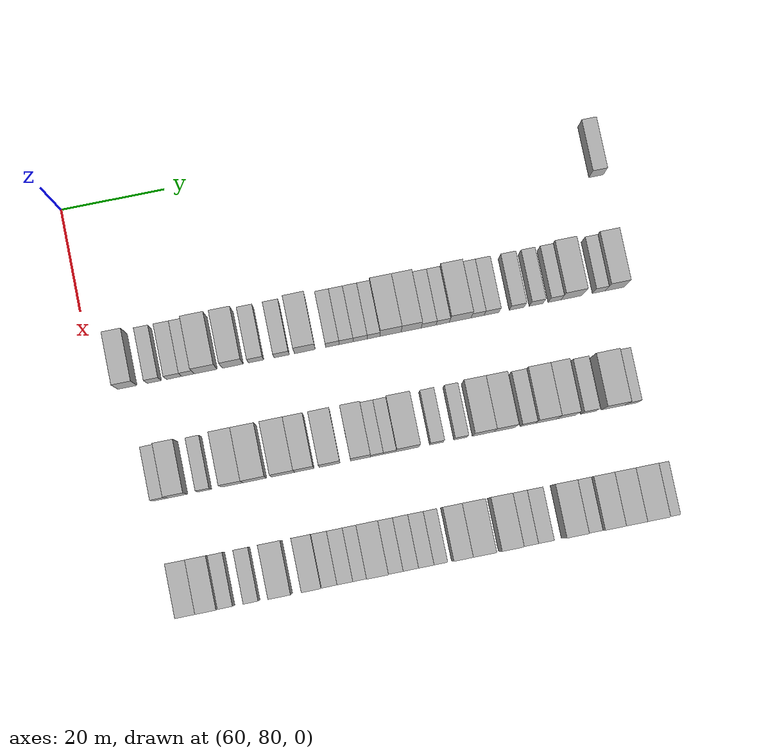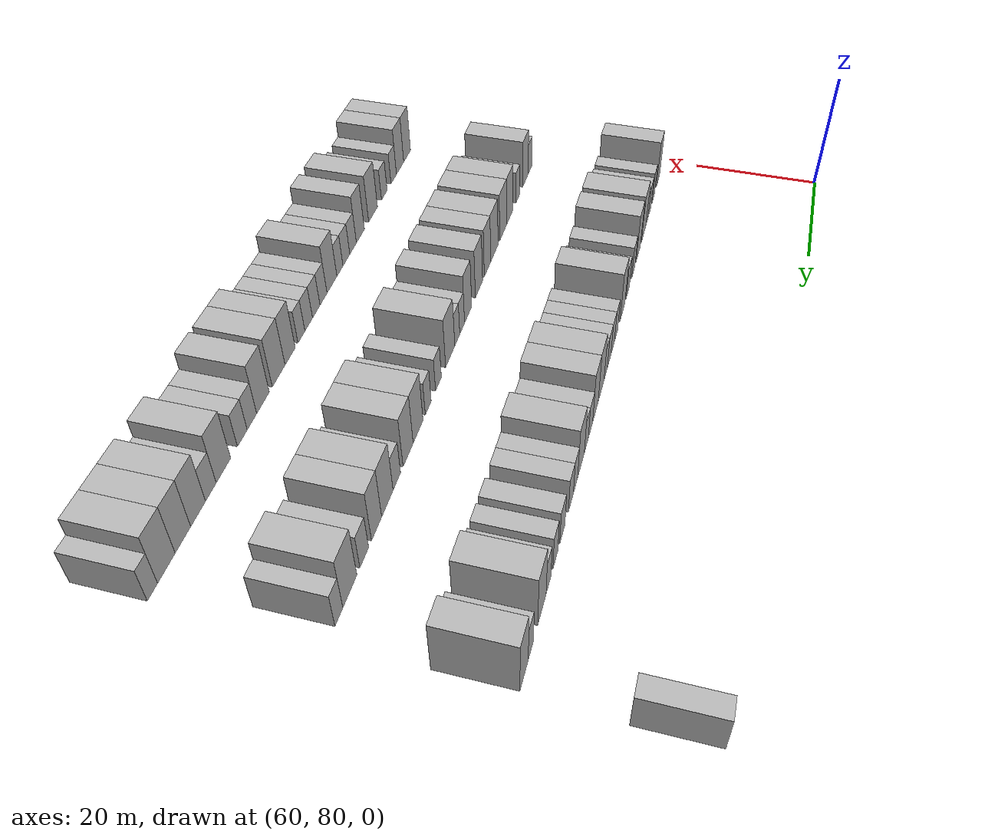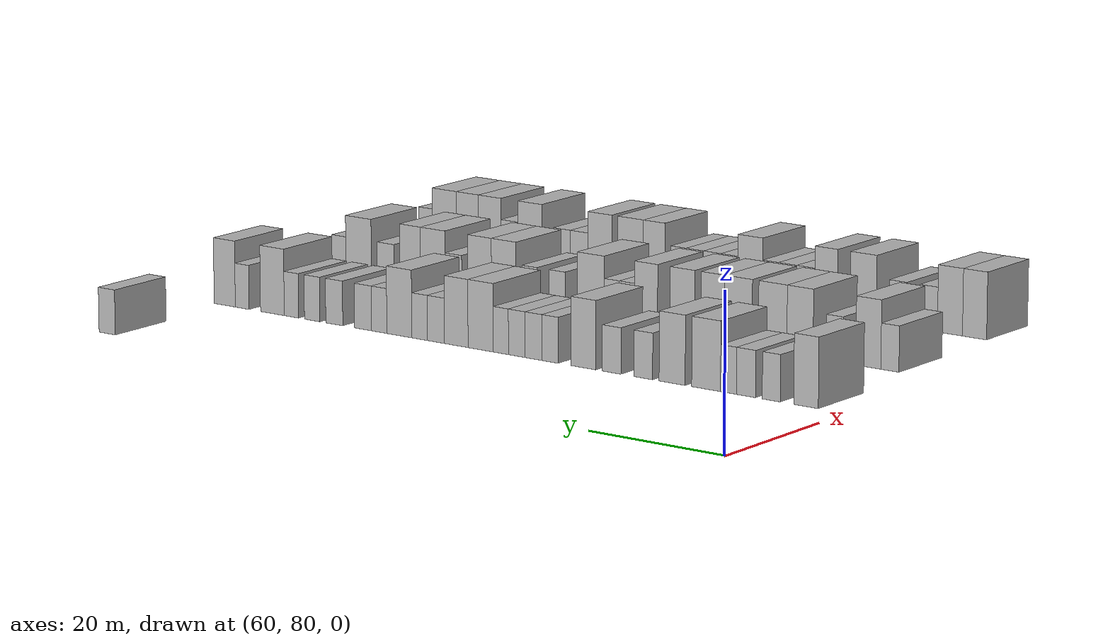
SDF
<sdf version="1.6">
 <world name="default">
  <model name="building_508">
   <static>1</static>
   <pose>69.0000 181.5095 0 0.000000 0.000000 0.000000</pose>
   <link name="link">
    <pose>0 0 3.00 0 0 0</pose>
    <collision name="collision"><geometry><box><size>10.0000 2.8325 6.0000</size></box></geometry></collision>
    <visual name="visual">
     <cast_shadows>0</cast_shadows>
     <geometry><box><size>10.0000 2.8325 6.0000</size></box></geometry>
     <material>
      <script>
       <uri>model://HANNAS_wall/materials/scripts</uri>
       <uri>model://HANNAS_wall/materials/textures</uri>
       <name>vrc/HANNAS_wall</name>
      </script>
     </material>
    </visual>
   </link>
  </model>
  <model name="building_673">
   <static>1</static>
   <pose>91.0000 86.1557 0 0.000000 0.000000 0.000000</pose>
   <link name="link">
    <pose>0 0 4.50 0 0 0</pose>
    <collision name="collision"><geometry><box><size>10.0000 3.6548 9.0000</size></box></geometry></collision>
    <visual name="visual">
     <cast_shadows>0</cast_shadows>
     <geometry><box><size>10.0000 3.6548 9.0000</size></box></geometry>
     <material>
      <script>
       <uri>model://HANNAS_wall/materials/scripts</uri>
       <uri>model://HANNAS_wall/materials/textures</uri>
       <name>vrc/HANNAS_wall</name>
      </script>
     </material>
    </visual>
   </link>
  </model>
  <model name="building_674">
   <static>1</static>
   <pose>91.0000 91.3397 0 0.000000 0.000000 0.000000</pose>
   <link name="link">
    <pose>0 0 3.00 0 0 0</pose>
    <collision name="collision"><geometry><box><size>10.0000 2.7131 6.0000</size></box></geometry></collision>
    <visual name="visual">
     <cast_shadows>0</cast_shadows>
     <geometry><box><size>10.0000 2.7131 6.0000</size></box></geometry>
     <material>
      <script>
       <uri>model://HANNAS_wall/materials/scripts</uri>
       <uri>model://HANNAS_wall/materials/textures</uri>
       <name>vrc/HANNAS_wall</name>
      </script>
     </material>
    </visual>
   </link>
  </model>
  <model name="building_675">
   <static>1</static>
   <pose>91.0000 95.1512 0 0.000000 0.000000 0.000000</pose>
   <link name="link">
    <pose>0 0 3.00 0 0 0</pose>
    <collision name="collision"><geometry><box><size>10.0000 2.9099 6.0000</size></box></geometry></collision>
    <visual name="visual">
     <cast_shadows>0</cast_shadows>
     <geometry><box><size>10.0000 2.9099 6.0000</size></box></geometry>
     <material>
      <script>
       <uri>model://HANNAS_wall/materials/scripts</uri>
       <uri>model://HANNAS_wall/materials/textures</uri>
       <name>vrc/HANNAS_wall</name>
      </script>
     </material>
    </visual>
   </link>
  </model>
  <model name="building_676">
   <static>1</static>
   <pose>91.0000 97.8167 0 0.000000 0.000000 0.000000</pose>
   <link name="link">
    <pose>0 0 3.00 0 0 0</pose>
    <collision name="collision"><geometry><box><size>10.0000 2.4213 6.0000</size></box></geometry></collision>
    <visual name="visual">
     <cast_shadows>0</cast_shadows>
     <geometry><box><size>10.0000 2.4213 6.0000</size></box></geometry>
     <material>
      <script>
       <uri>model://HANNAS_wall/materials/scripts</uri>
       <uri>model://HANNAS_wall/materials/textures</uri>
       <name>vrc/HANNAS_wall</name>
      </script>
     </material>
    </visual>
   </link>
  </model>
  <model name="building_677">
   <static>1</static>
   <pose>91.0000 101.2308 0 0.000000 0.000000 0.000000</pose>
   <link name="link">
    <pose>0 0 4.50 0 0 0</pose>
    <collision name="collision"><geometry><box><size>10.0000 4.4069 9.0000</size></box></geometry></collision>
    <visual name="visual">
     <cast_shadows>0</cast_shadows>
     <geometry><box><size>10.0000 4.4069 9.0000</size></box></geometry>
     <material>
      <script>
       <uri>model://HANNAS_wall/materials/scripts</uri>
       <uri>model://HANNAS_wall/materials/textures</uri>
       <name>vrc/HANNAS_wall</name>
      </script>
     </material>
    </visual>
   </link>
  </model>
  <model name="building_678">
   <static>1</static>
   <pose>91.0000 106.4465 0 0.000000 0.000000 0.000000</pose>
   <link name="link">
    <pose>0 0 4.50 0 0 0</pose>
    <collision name="collision"><geometry><box><size>10.0000 4.0245 9.0000</size></box></geometry></collision>
    <visual name="visual">
     <cast_shadows>0</cast_shadows>
     <geometry><box><size>10.0000 4.0245 9.0000</size></box></geometry>
     <material>
      <script>
       <uri>model://HANNAS_wall/materials/scripts</uri>
       <uri>model://HANNAS_wall/materials/textures</uri>
       <name>vrc/HANNAS_wall</name>
      </script>
     </material>
    </visual>
   </link>
  </model>
  <model name="building_679">
   <static>1</static>
   <pose>91.0000 110.9338 0 0.000000 0.000000 0.000000</pose>
   <link name="link">
    <pose>0 0 3.00 0 0 0</pose>
    <collision name="collision"><geometry><box><size>10.0000 2.9501 6.0000</size></box></geometry></collision>
    <visual name="visual">
     <cast_shadows>0</cast_shadows>
     <geometry><box><size>10.0000 2.9501 6.0000</size></box></geometry>
     <material>
      <script>
       <uri>model://HANNAS_wall/materials/scripts</uri>
       <uri>model://HANNAS_wall/materials/textures</uri>
       <name>vrc/HANNAS_wall</name>
      </script>
     </material>
    </visual>
   </link>
  </model>
  <model name="building_680">
   <static>1</static>
   <pose>91.0000 115.8679 0 0.000000 0.000000 0.000000</pose>
   <link name="link">
    <pose>0 0 3.00 0 0 0</pose>
    <collision name="collision"><geometry><box><size>10.0000 2.9180 6.0000</size></box></geometry></collision>
    <visual name="visual">
     <cast_shadows>0</cast_shadows>
     <geometry><box><size>10.0000 2.9180 6.0000</size></box></geometry>
     <material>
      <script>
       <uri>model://HANNAS_wall/materials/scripts</uri>
       <uri>model://HANNAS_wall/materials/textures</uri>
       <name>vrc/HANNAS_wall</name>
      </script>
     </material>
    </visual>
   </link>
  </model>
  <model name="building_681">
   <static>1</static>
   <pose>91.0000 120.3312 0 0.000000 0.000000 0.000000</pose>
   <link name="link">
    <pose>0 0 4.50 0 0 0</pose>
    <collision name="collision"><geometry><box><size>10.0000 4.0087 9.0000</size></box></geometry></collision>
    <visual name="visual">
     <cast_shadows>0</cast_shadows>
     <geometry><box><size>10.0000 4.0087 9.0000</size></box></geometry>
     <material>
      <script>
       <uri>model://HANNAS_wall/materials/scripts</uri>
       <uri>model://HANNAS_wall/materials/textures</uri>
       <name>vrc/HANNAS_wall</name>
      </script>
     </material>
    </visual>
   </link>
  </model>
  <model name="building_682">
   <static>1</static>
   <pose>91.0000 125.6425 0 0.000000 0.000000 0.000000</pose>
   <link name="link">
    <pose>0 0 3.00 0 0 0</pose>
    <collision name="collision"><geometry><box><size>10.0000 2.6140 6.0000</size></box></geometry></collision>
    <visual name="visual">
     <cast_shadows>0</cast_shadows>
     <geometry><box><size>10.0000 2.6140 6.0000</size></box></geometry>
     <material>
      <script>
       <uri>model://HANNAS_wall/materials/scripts</uri>
       <uri>model://HANNAS_wall/materials/textures</uri>
       <name>vrc/HANNAS_wall</name>
      </script>
     </material>
    </visual>
   </link>
  </model>
  <model name="building_683">
   <static>1</static>
   <pose>91.0000 128.2818 0 0.000000 0.000000 0.000000</pose>
   <link name="link">
    <pose>0 0 3.00 0 0 0</pose>
    <collision name="collision"><geometry><box><size>10.0000 2.6646 6.0000</size></box></geometry></collision>
    <visual name="visual">
     <cast_shadows>0</cast_shadows>
     <geometry><box><size>10.0000 2.6646 6.0000</size></box></geometry>
     <material>
      <script>
       <uri>model://HANNAS_wall/materials/scripts</uri>
       <uri>model://HANNAS_wall/materials/textures</uri>
       <name>vrc/HANNAS_wall</name>
      </script>
     </material>
    </visual>
   </link>
  </model>
  <model name="building_684">
   <static>1</static>
   <pose>91.0000 130.9740 0 0.000000 0.000000 0.000000</pose>
   <link name="link">
    <pose>0 0 3.00 0 0 0</pose>
    <collision name="collision"><geometry><box><size>10.0000 2.7198 6.0000</size></box></geometry></collision>
    <visual name="visual">
     <cast_shadows>0</cast_shadows>
     <geometry><box><size>10.0000 2.7198 6.0000</size></box></geometry>
     <material>
      <script>
       <uri>model://HANNAS_wall/materials/scripts</uri>
       <uri>model://HANNAS_wall/materials/textures</uri>
       <name>vrc/HANNAS_wall</name>
      </script>
     </material>
    </visual>
   </link>
  </model>
  <model name="building_685">
   <static>1</static>
   <pose>91.0000 133.5586 0 0.000000 0.000000 0.000000</pose>
   <link name="link">
    <pose>0 0 3.00 0 0 0</pose>
    <collision name="collision"><geometry><box><size>10.0000 2.4494 6.0000</size></box></geometry></collision>
    <visual name="visual">
     <cast_shadows>0</cast_shadows>
     <geometry><box><size>10.0000 2.4494 6.0000</size></box></geometry>
     <material>
      <script>
       <uri>model://HANNAS_wall/materials/scripts</uri>
       <uri>model://HANNAS_wall/materials/textures</uri>
       <name>vrc/HANNAS_wall</name>
      </script>
     </material>
    </visual>
   </link>
  </model>
  <model name="building_686">
   <static>1</static>
   <pose>91.0000 136.8448 0 0.000000 0.000000 0.000000</pose>
   <link name="link">
    <pose>0 0 4.50 0 0 0</pose>
    <collision name="collision"><geometry><box><size>10.0000 4.1232 9.0000</size></box></geometry></collision>
    <visual name="visual">
     <cast_shadows>0</cast_shadows>
     <geometry><box><size>10.0000 4.1232 9.0000</size></box></geometry>
     <material>
      <script>
       <uri>model://HANNAS_wall/materials/scripts</uri>
       <uri>model://HANNAS_wall/materials/textures</uri>
       <name>vrc/HANNAS_wall</name>
      </script>
     </material>
    </visual>
   </link>
  </model>
  <model name="building_687">
   <static>1</static>
   <pose>91.0000 140.8391 0 0.000000 0.000000 0.000000</pose>
   <link name="link">
    <pose>0 0 4.50 0 0 0</pose>
    <collision name="collision"><geometry><box><size>10.0000 3.8653 9.0000</size></box></geometry></collision>
    <visual name="visual">
     <cast_shadows>0</cast_shadows>
     <geometry><box><size>10.0000 3.8653 9.0000</size></box></geometry>
     <material>
      <script>
       <uri>model://HANNAS_wall/materials/scripts</uri>
       <uri>model://HANNAS_wall/materials/textures</uri>
       <name>vrc/HANNAS_wall</name>
      </script>
     </material>
    </visual>
   </link>
  </model>
  <model name="building_688">
   <static>1</static>
   <pose>91.0000 144.2069 0 0.000000 0.000000 0.000000</pose>
   <link name="link">
    <pose>0 0 3.00 0 0 0</pose>
    <collision name="collision"><geometry><box><size>10.0000 2.8703 6.0000</size></box></geometry></collision>
    <visual name="visual">
     <cast_shadows>0</cast_shadows>
     <geometry><box><size>10.0000 2.8703 6.0000</size></box></geometry>
     <material>
      <script>
       <uri>model://HANNAS_wall/materials/scripts</uri>
       <uri>model://HANNAS_wall/materials/textures</uri>
       <name>vrc/HANNAS_wall</name>
      </script>
     </material>
    </visual>
   </link>
  </model>
  <model name="building_689">
   <static>1</static>
   <pose>91.0000 146.9290 0 0.000000 0.000000 0.000000</pose>
   <link name="link">
    <pose>0 0 3.00 0 0 0</pose>
    <collision name="collision"><geometry><box><size>10.0000 2.5738 6.0000</size></box></geometry></collision>
    <visual name="visual">
     <cast_shadows>0</cast_shadows>
     <geometry><box><size>10.0000 2.5738 6.0000</size></box></geometry>
     <material>
      <script>
       <uri>model://HANNAS_wall/materials/scripts</uri>
       <uri>model://HANNAS_wall/materials/textures</uri>
       <name>vrc/HANNAS_wall</name>
      </script>
     </material>
    </visual>
   </link>
  </model>
  <model name="building_690">
   <static>1</static>
   <pose>91.0000 150.2969 0 0.000000 0.000000 0.000000</pose>
   <link name="link">
    <pose>0 0 4.50 0 0 0</pose>
    <collision name="collision"><geometry><box><size>10.0000 4.1620 9.0000</size></box></geometry></collision>
    <visual name="visual">
     <cast_shadows>0</cast_shadows>
     <geometry><box><size>10.0000 4.1620 9.0000</size></box></geometry>
     <material>
      <script>
       <uri>model://HANNAS_wall/materials/scripts</uri>
       <uri>model://HANNAS_wall/materials/textures</uri>
       <name>vrc/HANNAS_wall</name>
      </script>
     </material>
    </visual>
   </link>
  </model>
  <model name="building_691">
   <static>1</static>
   <pose>91.0000 153.6661 0 0.000000 0.000000 0.000000</pose>
   <link name="link">
    <pose>0 0 3.00 0 0 0</pose>
    <collision name="collision"><geometry><box><size>10.0000 2.5764 6.0000</size></box></geometry></collision>
    <visual name="visual">
     <cast_shadows>0</cast_shadows>
     <geometry><box><size>10.0000 2.5764 6.0000</size></box></geometry>
     <material>
      <script>
       <uri>model://HANNAS_wall/materials/scripts</uri>
       <uri>model://HANNAS_wall/materials/textures</uri>
       <name>vrc/HANNAS_wall</name>
      </script>
     </material>
    </visual>
   </link>
  </model>
  <model name="building_692">
   <static>1</static>
   <pose>91.0000 156.3882 0 0.000000 0.000000 0.000000</pose>
   <link name="link">
    <pose>0 0 3.00 0 0 0</pose>
    <collision name="collision"><geometry><box><size>10.0000 2.8679 6.0000</size></box></geometry></collision>
    <visual name="visual">
     <cast_shadows>0</cast_shadows>
     <geometry><box><size>10.0000 2.8679 6.0000</size></box></geometry>
     <material>
      <script>
       <uri>model://HANNAS_wall/materials/scripts</uri>
       <uri>model://HANNAS_wall/materials/textures</uri>
       <name>vrc/HANNAS_wall</name>
      </script>
     </material>
    </visual>
   </link>
  </model>
  <model name="building_693">
   <static>1</static>
   <pose>91.0000 161.2686 0 0.000000 0.000000 0.000000</pose>
   <link name="link">
    <pose>0 0 3.00 0 0 0</pose>
    <collision name="collision"><geometry><box><size>10.0000 2.8929 6.0000</size></box></geometry></collision>
    <visual name="visual">
     <cast_shadows>0</cast_shadows>
     <geometry><box><size>10.0000 2.8929 6.0000</size></box></geometry>
     <material>
      <script>
       <uri>model://HANNAS_wall/materials/scripts</uri>
       <uri>model://HANNAS_wall/materials/textures</uri>
       <name>vrc/HANNAS_wall</name>
      </script>
     </material>
    </visual>
   </link>
  </model>
  <model name="building_694">
   <static>1</static>
   <pose>91.0000 165.0436 0 0.000000 0.000000 0.000000</pose>
   <link name="link">
    <pose>0 0 3.00 0 0 0</pose>
    <collision name="collision"><geometry><box><size>10.0000 2.6571 6.0000</size></box></geometry></collision>
    <visual name="visual">
     <cast_shadows>0</cast_shadows>
     <geometry><box><size>10.0000 2.6571 6.0000</size></box></geometry>
     <material>
      <script>
       <uri>model://HANNAS_wall/materials/scripts</uri>
       <uri>model://HANNAS_wall/materials/textures</uri>
       <name>vrc/HANNAS_wall</name>
      </script>
     </material>
    </visual>
   </link>
  </model>
  <model name="building_695">
   <static>1</static>
   <pose>91.0000 168.6151 0 0.000000 0.000000 0.000000</pose>
   <link name="link">
    <pose>0 0 3.00 0 0 0</pose>
    <collision name="collision"><geometry><box><size>10.0000 2.4859 6.0000</size></box></geometry></collision>
    <visual name="visual">
     <cast_shadows>0</cast_shadows>
     <geometry><box><size>10.0000 2.4859 6.0000</size></box></geometry>
     <material>
      <script>
       <uri>model://HANNAS_wall/materials/scripts</uri>
       <uri>model://HANNAS_wall/materials/textures</uri>
       <name>vrc/HANNAS_wall</name>
      </script>
     </material>
    </visual>
   </link>
  </model>
  <model name="building_696">
   <static>1</static>
   <pose>91.0000 171.9200 0 0.000000 0.000000 0.000000</pose>
   <link name="link">
    <pose>0 0 4.50 0 0 0</pose>
    <collision name="collision"><geometry><box><size>10.0000 4.1239 9.0000</size></box></geometry></collision>
    <visual name="visual">
     <cast_shadows>0</cast_shadows>
     <geometry><box><size>10.0000 4.1239 9.0000</size></box></geometry>
     <material>
      <script>
       <uri>model://HANNAS_wall/materials/scripts</uri>
       <uri>model://HANNAS_wall/materials/textures</uri>
       <name>vrc/HANNAS_wall</name>
      </script>
     </material>
    </visual>
   </link>
  </model>
  <model name="building_697">
   <static>1</static>
   <pose>91.0000 177.1894 0 0.000000 0.000000 0.000000</pose>
   <link name="link">
    <pose>0 0 3.00 0 0 0</pose>
    <collision name="collision"><geometry><box><size>10.0000 2.4148 6.0000</size></box></geometry></collision>
    <visual name="visual">
     <cast_shadows>0</cast_shadows>
     <geometry><box><size>10.0000 2.4148 6.0000</size></box></geometry>
     <material>
      <script>
       <uri>model://HANNAS_wall/materials/scripts</uri>
       <uri>model://HANNAS_wall/materials/textures</uri>
       <name>vrc/HANNAS_wall</name>
      </script>
     </material>
    </visual>
   </link>
  </model>
  <model name="building_698">
   <static>1</static>
   <pose>91.0000 180.2537 0 0.000000 0.000000 0.000000</pose>
   <link name="link">
    <pose>0 0 4.50 0 0 0</pose>
    <collision name="collision"><geometry><box><size>10.0000 3.7137 9.0000</size></box></geometry></collision>
    <visual name="visual">
     <cast_shadows>0</cast_shadows>
     <geometry><box><size>10.0000 3.7137 9.0000</size></box></geometry>
     <material>
      <script>
       <uri>model://HANNAS_wall/materials/scripts</uri>
       <uri>model://HANNAS_wall/materials/textures</uri>
       <name>vrc/HANNAS_wall</name>
      </script>
     </material>
    </visual>
   </link>
  </model>
  <model name="building_863">
   <static>1</static>
   <pose>113.0000 88.3572 0 0.000000 0.000000 0.000000</pose>
   <link name="link">
    <pose>0 0 3.00 0 0 0</pose>
    <collision name="collision"><geometry><box><size>10.0000 2.7347 6.0000</size></box></geometry></collision>
    <visual name="visual">
     <cast_shadows>0</cast_shadows>
     <geometry><box><size>10.0000 2.7347 6.0000</size></box></geometry>
     <material>
      <script>
       <uri>model://HANNAS_wall/materials/scripts</uri>
       <uri>model://HANNAS_wall/materials/textures</uri>
       <name>vrc/HANNAS_wall</name>
      </script>
     </material>
    </visual>
   </link>
  </model>
  <model name="building_864">
   <static>1</static>
   <pose>113.0000 91.6264 0 0.000000 0.000000 0.000000</pose>
   <link name="link">
    <pose>0 0 4.50 0 0 0</pose>
    <collision name="collision"><geometry><box><size>10.0000 3.8037 9.0000</size></box></geometry></collision>
    <visual name="visual">
     <cast_shadows>0</cast_shadows>
     <geometry><box><size>10.0000 3.8037 9.0000</size></box></geometry>
     <material>
      <script>
       <uri>model://HANNAS_wall/materials/scripts</uri>
       <uri>model://HANNAS_wall/materials/textures</uri>
       <name>vrc/HANNAS_wall</name>
      </script>
     </material>
    </visual>
   </link>
  </model>
  <model name="building_865">
   <static>1</static>
   <pose>113.0000 96.8182 0 0.000000 0.000000 0.000000</pose>
   <link name="link">
    <pose>0 0 3.00 0 0 0</pose>
    <collision name="collision"><geometry><box><size>10.0000 2.5799 6.0000</size></box></geometry></collision>
    <visual name="visual">
     <cast_shadows>0</cast_shadows>
     <geometry><box><size>10.0000 2.5799 6.0000</size></box></geometry>
     <material>
      <script>
       <uri>model://HANNAS_wall/materials/scripts</uri>
       <uri>model://HANNAS_wall/materials/textures</uri>
       <name>vrc/HANNAS_wall</name>
      </script>
     </material>
    </visual>
   </link>
  </model>
  <model name="building_866">
   <static>1</static>
   <pose>113.0000 102.1430 0 0.000000 0.000000 0.000000</pose>
   <link name="link">
    <pose>0 0 4.50 0 0 0</pose>
    <collision name="collision"><geometry><box><size>10.0000 4.0697 9.0000</size></box></geometry></collision>
    <visual name="visual">
     <cast_shadows>0</cast_shadows>
     <geometry><box><size>10.0000 4.0697 9.0000</size></box></geometry>
     <material>
      <script>
       <uri>model://HANNAS_wall/materials/scripts</uri>
       <uri>model://HANNAS_wall/materials/textures</uri>
       <name>vrc/HANNAS_wall</name>
      </script>
     </material>
    </visual>
   </link>
  </model>
  <model name="building_867">
   <static>1</static>
   <pose>113.0000 106.3964 0 0.000000 0.000000 0.000000</pose>
   <link name="link">
    <pose>0 0 4.50 0 0 0</pose>
    <collision name="collision"><geometry><box><size>10.0000 4.4372 9.0000</size></box></geometry></collision>
    <visual name="visual">
     <cast_shadows>0</cast_shadows>
     <geometry><box><size>10.0000 4.4372 9.0000</size></box></geometry>
     <material>
      <script>
       <uri>model://HANNAS_wall/materials/scripts</uri>
       <uri>model://HANNAS_wall/materials/textures</uri>
       <name>vrc/HANNAS_wall</name>
      </script>
     </material>
    </visual>
   </link>
  </model>
  <model name="building_868">
   <static>1</static>
   <pose>113.0000 111.7997 0 0.000000 0.000000 0.000000</pose>
   <link name="link">
    <pose>0 0 4.50 0 0 0</pose>
    <collision name="collision"><geometry><box><size>10.0000 4.3693 9.0000</size></box></geometry></collision>
    <visual name="visual">
     <cast_shadows>0</cast_shadows>
     <geometry><box><size>10.0000 4.3693 9.0000</size></box></geometry>
     <material>
      <script>
       <uri>model://HANNAS_wall/materials/scripts</uri>
       <uri>model://HANNAS_wall/materials/textures</uri>
       <name>vrc/HANNAS_wall</name>
      </script>
     </material>
    </visual>
   </link>
  </model>
  <model name="building_869">
   <static>1</static>
   <pose>113.0000 115.8476 0 0.000000 0.000000 0.000000</pose>
   <link name="link">
    <pose>0 0 4.50 0 0 0</pose>
    <collision name="collision"><geometry><box><size>10.0000 3.7265 9.0000</size></box></geometry></collision>
    <visual name="visual">
     <cast_shadows>0</cast_shadows>
     <geometry><box><size>10.0000 3.7265 9.0000</size></box></geometry>
     <material>
      <script>
       <uri>model://HANNAS_wall/materials/scripts</uri>
       <uri>model://HANNAS_wall/materials/textures</uri>
       <name>vrc/HANNAS_wall</name>
      </script>
     </material>
    </visual>
   </link>
  </model>
  <model name="building_870">
   <static>1</static>
   <pose>113.0000 120.6963 0 0.000000 0.000000 0.000000</pose>
   <link name="link">
    <pose>0 0 4.50 0 0 0</pose>
    <collision name="collision"><geometry><box><size>10.0000 3.9709 9.0000</size></box></geometry></collision>
    <visual name="visual">
     <cast_shadows>0</cast_shadows>
     <geometry><box><size>10.0000 3.9709 9.0000</size></box></geometry>
     <material>
      <script>
       <uri>model://HANNAS_wall/materials/scripts</uri>
       <uri>model://HANNAS_wall/materials/textures</uri>
       <name>vrc/HANNAS_wall</name>
      </script>
     </material>
    </visual>
   </link>
  </model>
  <model name="building_871">
   <static>1</static>
   <pose>113.0000 126.5660 0 0.000000 0.000000 0.000000</pose>
   <link name="link">
    <pose>0 0 4.50 0 0 0</pose>
    <collision name="collision"><geometry><box><size>10.0000 3.7685 9.0000</size></box></geometry></collision>
    <visual name="visual">
     <cast_shadows>0</cast_shadows>
     <geometry><box><size>10.0000 3.7685 9.0000</size></box></geometry>
     <material>
      <script>
       <uri>model://HANNAS_wall/materials/scripts</uri>
       <uri>model://HANNAS_wall/materials/textures</uri>
       <name>vrc/HANNAS_wall</name>
      </script>
     </material>
    </visual>
   </link>
  </model>
  <model name="building_872">
   <static>1</static>
   <pose>113.0000 129.6794 0 0.000000 0.000000 0.000000</pose>
   <link name="link">
    <pose>0 0 3.00 0 0 0</pose>
    <collision name="collision"><geometry><box><size>10.0000 2.4583 6.0000</size></box></geometry></collision>
    <visual name="visual">
     <cast_shadows>0</cast_shadows>
     <geometry><box><size>10.0000 2.4583 6.0000</size></box></geometry>
     <material>
      <script>
       <uri>model://HANNAS_wall/materials/scripts</uri>
       <uri>model://HANNAS_wall/materials/textures</uri>
       <name>vrc/HANNAS_wall</name>
      </script>
     </material>
    </visual>
   </link>
  </model>
  <model name="building_873">
   <static>1</static>
   <pose>113.0000 132.1435 0 0.000000 0.000000 0.000000</pose>
   <link name="link">
    <pose>0 0 3.00 0 0 0</pose>
    <collision name="collision"><geometry><box><size>10.0000 2.4699 6.0000</size></box></geometry></collision>
    <visual name="visual">
     <cast_shadows>0</cast_shadows>
     <geometry><box><size>10.0000 2.4699 6.0000</size></box></geometry>
     <material>
      <script>
       <uri>model://HANNAS_wall/materials/scripts</uri>
       <uri>model://HANNAS_wall/materials/textures</uri>
       <name>vrc/HANNAS_wall</name>
      </script>
     </material>
    </visual>
   </link>
  </model>
  <model name="building_874">
   <static>1</static>
   <pose>113.0000 135.6031 0 0.000000 0.000000 0.000000</pose>
   <link name="link">
    <pose>0 0 4.50 0 0 0</pose>
    <collision name="collision"><geometry><box><size>10.0000 4.4492 9.0000</size></box></geometry></collision>
    <visual name="visual">
     <cast_shadows>0</cast_shadows>
     <geometry><box><size>10.0000 4.4492 9.0000</size></box></geometry>
     <material>
      <script>
       <uri>model://HANNAS_wall/materials/scripts</uri>
       <uri>model://HANNAS_wall/materials/textures</uri>
       <name>vrc/HANNAS_wall</name>
      </script>
     </material>
    </visual>
   </link>
  </model>
  <model name="building_875">
   <static>1</static>
   <pose>113.0000 141.1550 0 0.000000 0.000000 0.000000</pose>
   <link name="link">
    <pose>0 0 3.00 0 0 0</pose>
    <collision name="collision"><geometry><box><size>10.0000 2.6547 6.0000</size></box></geometry></collision>
    <visual name="visual">
     <cast_shadows>0</cast_shadows>
     <geometry><box><size>10.0000 2.6547 6.0000</size></box></geometry>
     <material>
      <script>
       <uri>model://HANNAS_wall/materials/scripts</uri>
       <uri>model://HANNAS_wall/materials/textures</uri>
       <name>vrc/HANNAS_wall</name>
      </script>
     </material>
    </visual>
   </link>
  </model>
  <model name="building_876">
   <static>1</static>
   <pose>113.0000 145.7586 0 0.000000 0.000000 0.000000</pose>
   <link name="link">
    <pose>0 0 3.00 0 0 0</pose>
    <collision name="collision"><geometry><box><size>10.0000 2.5526 6.0000</size></box></geometry></collision>
    <visual name="visual">
     <cast_shadows>0</cast_shadows>
     <geometry><box><size>10.0000 2.5526 6.0000</size></box></geometry>
     <material>
      <script>
       <uri>model://HANNAS_wall/materials/scripts</uri>
       <uri>model://HANNAS_wall/materials/textures</uri>
       <name>vrc/HANNAS_wall</name>
      </script>
     </material>
    </visual>
   </link>
  </model>
  <model name="building_877">
   <static>1</static>
   <pose>113.0000 150.0993 0 0.000000 0.000000 0.000000</pose>
   <link name="link">
    <pose>0 0 4.50 0 0 0</pose>
    <collision name="collision"><geometry><box><size>10.0000 4.1287 9.0000</size></box></geometry></collision>
    <visual name="visual">
     <cast_shadows>0</cast_shadows>
     <geometry><box><size>10.0000 4.1287 9.0000</size></box></geometry>
     <material>
      <script>
       <uri>model://HANNAS_wall/materials/scripts</uri>
       <uri>model://HANNAS_wall/materials/textures</uri>
       <name>vrc/HANNAS_wall</name>
      </script>
     </material>
    </visual>
   </link>
  </model>
  <model name="building_878">
   <static>1</static>
   <pose>113.0000 154.1936 0 0.000000 0.000000 0.000000</pose>
   <link name="link">
    <pose>0 0 4.50 0 0 0</pose>
    <collision name="collision"><geometry><box><size>10.0000 4.0599 9.0000</size></box></geometry></collision>
    <visual name="visual">
     <cast_shadows>0</cast_shadows>
     <geometry><box><size>10.0000 4.0599 9.0000</size></box></geometry>
     <material>
      <script>
       <uri>model://HANNAS_wall/materials/scripts</uri>
       <uri>model://HANNAS_wall/materials/textures</uri>
       <name>vrc/HANNAS_wall</name>
      </script>
     </material>
    </visual>
   </link>
  </model>
  <model name="building_879">
   <static>1</static>
   <pose>113.0000 158.6596 0 0.000000 0.000000 0.000000</pose>
   <link name="link">
    <pose>0 0 3.00 0 0 0</pose>
    <collision name="collision"><geometry><box><size>10.0000 2.8721 6.0000</size></box></geometry></collision>
    <visual name="visual">
     <cast_shadows>0</cast_shadows>
     <geometry><box><size>10.0000 2.8721 6.0000</size></box></geometry>
     <material>
      <script>
       <uri>model://HANNAS_wall/materials/scripts</uri>
       <uri>model://HANNAS_wall/materials/textures</uri>
       <name>vrc/HANNAS_wall</name>
      </script>
     </material>
    </visual>
   </link>
  </model>
  <model name="building_880">
   <static>1</static>
   <pose>113.0000 162.2054 0 0.000000 0.000000 0.000000</pose>
   <link name="link">
    <pose>0 0 4.50 0 0 0</pose>
    <collision name="collision"><geometry><box><size>10.0000 4.2196 9.0000</size></box></geometry></collision>
    <visual name="visual">
     <cast_shadows>0</cast_shadows>
     <geometry><box><size>10.0000 4.2196 9.0000</size></box></geometry>
     <material>
      <script>
       <uri>model://HANNAS_wall/materials/scripts</uri>
       <uri>model://HANNAS_wall/materials/textures</uri>
       <name>vrc/HANNAS_wall</name>
      </script>
     </material>
    </visual>
   </link>
  </model>
  <model name="building_881">
   <static>1</static>
   <pose>113.0000 166.1177 0 0.000000 0.000000 0.000000</pose>
   <link name="link">
    <pose>0 0 4.50 0 0 0</pose>
    <collision name="collision"><geometry><box><size>10.0000 3.6051 9.0000</size></box></geometry></collision>
    <visual name="visual">
     <cast_shadows>0</cast_shadows>
     <geometry><box><size>10.0000 3.6051 9.0000</size></box></geometry>
     <material>
      <script>
       <uri>model://HANNAS_wall/materials/scripts</uri>
       <uri>model://HANNAS_wall/materials/textures</uri>
       <name>vrc/HANNAS_wall</name>
      </script>
     </material>
    </visual>
   </link>
  </model>
  <model name="building_882">
   <static>1</static>
   <pose>113.0000 170.3999 0 0.000000 0.000000 0.000000</pose>
   <link name="link">
    <pose>0 0 3.00 0 0 0</pose>
    <collision name="collision"><geometry><box><size>10.0000 2.9592 6.0000</size></box></geometry></collision>
    <visual name="visual">
     <cast_shadows>0</cast_shadows>
     <geometry><box><size>10.0000 2.9592 6.0000</size></box></geometry>
     <material>
      <script>
       <uri>model://HANNAS_wall/materials/scripts</uri>
       <uri>model://HANNAS_wall/materials/textures</uri>
       <name>vrc/HANNAS_wall</name>
      </script>
     </material>
    </visual>
   </link>
  </model>
  <model name="building_883">
   <static>1</static>
   <pose>113.0000 175.1222 0 0.000000 0.000000 0.000000</pose>
   <link name="link">
    <pose>0 0 4.50 0 0 0</pose>
    <collision name="collision"><geometry><box><size>10.0000 4.4856 9.0000</size></box></geometry></collision>
    <visual name="visual">
     <cast_shadows>0</cast_shadows>
     <geometry><box><size>10.0000 4.4856 9.0000</size></box></geometry>
     <material>
      <script>
       <uri>model://HANNAS_wall/materials/scripts</uri>
       <uri>model://HANNAS_wall/materials/textures</uri>
       <name>vrc/HANNAS_wall</name>
      </script>
     </material>
    </visual>
   </link>
  </model>
  <model name="building_884">
   <static>1</static>
   <pose>113.0000 178.5870 0 0.000000 0.000000 0.000000</pose>
   <link name="link">
    <pose>0 0 3.00 0 0 0</pose>
    <collision name="collision"><geometry><box><size>10.0000 2.4440 6.0000</size></box></geometry></collision>
    <visual name="visual">
     <cast_shadows>0</cast_shadows>
     <geometry><box><size>10.0000 2.4440 6.0000</size></box></geometry>
     <material>
      <script>
       <uri>model://HANNAS_wall/materials/scripts</uri>
       <uri>model://HANNAS_wall/materials/textures</uri>
       <name>vrc/HANNAS_wall</name>
      </script>
     </material>
    </visual>
   </link>
  </model>
  <model name="building_1039">
   <static>1</static>
   <pose>135.0000 89.7095 0 0.000000 0.000000 0.000000</pose>
   <link name="link">
    <pose>0 0 4.50 0 0 0</pose>
    <collision name="collision"><geometry><box><size>10.0000 3.7144 9.0000</size></box></geometry></collision>
    <visual name="visual">
     <cast_shadows>0</cast_shadows>
     <geometry><box><size>10.0000 3.7144 9.0000</size></box></geometry>
     <material>
      <script>
       <uri>model://HANNAS_wall/materials/scripts</uri>
       <uri>model://HANNAS_wall/materials/textures</uri>
       <name>vrc/HANNAS_wall</name>
      </script>
     </material>
    </visual>
   </link>
  </model>
  <model name="building_1040">
   <static>1</static>
   <pose>135.0000 93.5066 0 0.000000 0.000000 0.000000</pose>
   <link name="link">
    <pose>0 0 4.50 0 0 0</pose>
    <collision name="collision"><geometry><box><size>10.0000 3.8798 9.0000</size></box></geometry></collision>
    <visual name="visual">
     <cast_shadows>0</cast_shadows>
     <geometry><box><size>10.0000 3.8798 9.0000</size></box></geometry>
     <material>
      <script>
       <uri>model://HANNAS_wall/materials/scripts</uri>
       <uri>model://HANNAS_wall/materials/textures</uri>
       <name>vrc/HANNAS_wall</name>
      </script>
     </material>
    </visual>
   </link>
  </model>
  <model name="building_1041">
   <static>1</static>
   <pose>135.0000 96.8423 0 0.000000 0.000000 0.000000</pose>
   <link name="link">
    <pose>0 0 3.00 0 0 0</pose>
    <collision name="collision"><geometry><box><size>10.0000 2.7916 6.0000</size></box></geometry></collision>
    <visual name="visual">
     <cast_shadows>0</cast_shadows>
     <geometry><box><size>10.0000 2.7916 6.0000</size></box></geometry>
     <material>
      <script>
       <uri>model://HANNAS_wall/materials/scripts</uri>
       <uri>model://HANNAS_wall/materials/textures</uri>
       <name>vrc/HANNAS_wall</name>
      </script>
     </material>
    </visual>
   </link>
  </model>
  <model name="building_1042">
   <static>1</static>
   <pose>135.0000 101.6291 0 0.000000 0.000000 0.000000</pose>
   <link name="link">
    <pose>0 0 3.00 0 0 0</pose>
    <collision name="collision"><geometry><box><size>10.0000 2.7819 6.0000</size></box></geometry></collision>
    <visual name="visual">
     <cast_shadows>0</cast_shadows>
     <geometry><box><size>10.0000 2.7819 6.0000</size></box></geometry>
     <material>
      <script>
       <uri>model://HANNAS_wall/materials/scripts</uri>
       <uri>model://HANNAS_wall/materials/textures</uri>
       <name>vrc/HANNAS_wall</name>
      </script>
     </material>
    </visual>
   </link>
  </model>
  <model name="building_1043">
   <static>1</static>
   <pose>135.0000 107.1091 0 0.000000 0.000000 0.000000</pose>
   <link name="link">
    <pose>0 0 4.50 0 0 0</pose>
    <collision name="collision"><geometry><box><size>10.0000 4.1783 9.0000</size></box></geometry></collision>
    <visual name="visual">
     <cast_shadows>0</cast_shadows>
     <geometry><box><size>10.0000 4.1783 9.0000</size></box></geometry>
     <material>
      <script>
       <uri>model://HANNAS_wall/materials/scripts</uri>
       <uri>model://HANNAS_wall/materials/textures</uri>
       <name>vrc/HANNAS_wall</name>
      </script>
     </material>
    </visual>
   </link>
  </model>
  <model name="building_1044">
   <static>1</static>
   <pose>135.0000 113.0150 0 0.000000 0.000000 0.000000</pose>
   <link name="link">
    <pose>0 0 4.50 0 0 0</pose>
    <collision name="collision"><geometry><box><size>10.0000 3.6335 9.0000</size></box></geometry></collision>
    <visual name="visual">
     <cast_shadows>0</cast_shadows>
     <geometry><box><size>10.0000 3.6335 9.0000</size></box></geometry>
     <material>
      <script>
       <uri>model://HANNAS_wall/materials/scripts</uri>
       <uri>model://HANNAS_wall/materials/textures</uri>
       <name>vrc/HANNAS_wall</name>
      </script>
     </material>
    </visual>
   </link>
  </model>
  <model name="building_1045">
   <static>1</static>
   <pose>135.0000 116.2947 0 0.000000 0.000000 0.000000</pose>
   <link name="link">
    <pose>0 0 3.00 0 0 0</pose>
    <collision name="collision"><geometry><box><size>10.0000 2.9258 6.0000</size></box></geometry></collision>
    <visual name="visual">
     <cast_shadows>0</cast_shadows>
     <geometry><box><size>10.0000 2.9258 6.0000</size></box></geometry>
     <material>
      <script>
       <uri>model://HANNAS_wall/materials/scripts</uri>
       <uri>model://HANNAS_wall/materials/textures</uri>
       <name>vrc/HANNAS_wall</name>
      </script>
     </material>
    </visual>
   </link>
  </model>
  <model name="building_1046">
   <static>1</static>
   <pose>135.0000 119.2328 0 0.000000 0.000000 0.000000</pose>
   <link name="link">
    <pose>0 0 3.00 0 0 0</pose>
    <collision name="collision"><geometry><box><size>10.0000 2.9504 6.0000</size></box></geometry></collision>
    <visual name="visual">
     <cast_shadows>0</cast_shadows>
     <geometry><box><size>10.0000 2.9504 6.0000</size></box></geometry>
     <material>
      <script>
       <uri>model://HANNAS_wall/materials/scripts</uri>
       <uri>model://HANNAS_wall/materials/textures</uri>
       <name>vrc/HANNAS_wall</name>
      </script>
     </material>
    </visual>
   </link>
  </model>
  <model name="building_1047">
   <static>1</static>
   <pose>135.0000 121.9899 0 0.000000 0.000000 0.000000</pose>
   <link name="link">
    <pose>0 0 3.00 0 0 0</pose>
    <collision name="collision"><geometry><box><size>10.0000 2.5638 6.0000</size></box></geometry></collision>
    <visual name="visual">
     <cast_shadows>0</cast_shadows>
     <geometry><box><size>10.0000 2.5638 6.0000</size></box></geometry>
     <material>
      <script>
       <uri>model://HANNAS_wall/materials/scripts</uri>
       <uri>model://HANNAS_wall/materials/textures</uri>
       <name>vrc/HANNAS_wall</name>
      </script>
     </material>
    </visual>
   </link>
  </model>
  <model name="building_1048">
   <static>1</static>
   <pose>135.0000 125.2971 0 0.000000 0.000000 0.000000</pose>
   <link name="link">
    <pose>0 0 4.50 0 0 0</pose>
    <collision name="collision"><geometry><box><size>10.0000 4.0505 9.0000</size></box></geometry></collision>
    <visual name="visual">
     <cast_shadows>0</cast_shadows>
     <geometry><box><size>10.0000 4.0505 9.0000</size></box></geometry>
     <material>
      <script>
       <uri>model://HANNAS_wall/materials/scripts</uri>
       <uri>model://HANNAS_wall/materials/textures</uri>
       <name>vrc/HANNAS_wall</name>
      </script>
     </material>
    </visual>
   </link>
  </model>
  <model name="building_1049">
   <static>1</static>
   <pose>135.0000 128.7251 0 0.000000 0.000000 0.000000</pose>
   <link name="link">
    <pose>0 0 3.00 0 0 0</pose>
    <collision name="collision"><geometry><box><size>10.0000 2.8057 6.0000</size></box></geometry></collision>
    <visual name="visual">
     <cast_shadows>0</cast_shadows>
     <geometry><box><size>10.0000 2.8057 6.0000</size></box></geometry>
     <material>
      <script>
       <uri>model://HANNAS_wall/materials/scripts</uri>
       <uri>model://HANNAS_wall/materials/textures</uri>
       <name>vrc/HANNAS_wall</name>
      </script>
     </material>
    </visual>
   </link>
  </model>
  <model name="building_1050">
   <static>1</static>
   <pose>135.0000 131.5645 0 0.000000 0.000000 0.000000</pose>
   <link name="link">
    <pose>0 0 3.00 0 0 0</pose>
    <collision name="collision"><geometry><box><size>10.0000 2.8731 6.0000</size></box></geometry></collision>
    <visual name="visual">
     <cast_shadows>0</cast_shadows>
     <geometry><box><size>10.0000 2.8731 6.0000</size></box></geometry>
     <material>
      <script>
       <uri>model://HANNAS_wall/materials/scripts</uri>
       <uri>model://HANNAS_wall/materials/textures</uri>
       <name>vrc/HANNAS_wall</name>
      </script>
     </material>
    </visual>
   </link>
  </model>
  <model name="building_1051">
   <static>1</static>
   <pose>135.0000 134.4499 0 0.000000 0.000000 0.000000</pose>
   <link name="link">
    <pose>0 0 3.00 0 0 0</pose>
    <collision name="collision"><geometry><box><size>10.0000 2.8976 6.0000</size></box></geometry></collision>
    <visual name="visual">
     <cast_shadows>0</cast_shadows>
     <geometry><box><size>10.0000 2.8976 6.0000</size></box></geometry>
     <material>
      <script>
       <uri>model://HANNAS_wall/materials/scripts</uri>
       <uri>model://HANNAS_wall/materials/textures</uri>
       <name>vrc/HANNAS_wall</name>
      </script>
     </material>
    </visual>
   </link>
  </model>
  <model name="building_1052">
   <static>1</static>
   <pose>135.0000 137.1709 0 0.000000 0.000000 0.000000</pose>
   <link name="link">
    <pose>0 0 3.00 0 0 0</pose>
    <collision name="collision"><geometry><box><size>10.0000 2.5445 6.0000</size></box></geometry></collision>
    <visual name="visual">
     <cast_shadows>0</cast_shadows>
     <geometry><box><size>10.0000 2.5445 6.0000</size></box></geometry>
     <material>
      <script>
       <uri>model://HANNAS_wall/materials/scripts</uri>
       <uri>model://HANNAS_wall/materials/textures</uri>
       <name>vrc/HANNAS_wall</name>
      </script>
     </material>
    </visual>
   </link>
  </model>
  <model name="building_1053">
   <static>1</static>
   <pose>135.0000 141.2492 0 0.000000 0.000000 0.000000</pose>
   <link name="link">
    <pose>0 0 4.50 0 0 0</pose>
    <collision name="collision"><geometry><box><size>10.0000 3.6121 9.0000</size></box></geometry></collision>
    <visual name="visual">
     <cast_shadows>0</cast_shadows>
     <geometry><box><size>10.0000 3.6121 9.0000</size></box></geometry>
     <material>
      <script>
       <uri>model://HANNAS_wall/materials/scripts</uri>
       <uri>model://HANNAS_wall/materials/textures</uri>
       <name>vrc/HANNAS_wall</name>
      </script>
     </material>
    </visual>
   </link>
  </model>
  <model name="building_1054">
   <static>1</static>
   <pose>135.0000 145.2330 0 0.000000 0.000000 0.000000</pose>
   <link name="link">
    <pose>0 0 4.50 0 0 0</pose>
    <collision name="collision"><geometry><box><size>10.0000 4.3555 9.0000</size></box></geometry></collision>
    <visual name="visual">
     <cast_shadows>0</cast_shadows>
     <geometry><box><size>10.0000 4.3555 9.0000</size></box></geometry>
     <material>
      <script>
       <uri>model://HANNAS_wall/materials/scripts</uri>
       <uri>model://HANNAS_wall/materials/textures</uri>
       <name>vrc/HANNAS_wall</name>
      </script>
     </material>
    </visual>
   </link>
  </model>
  <model name="building_1055">
   <static>1</static>
   <pose>135.0000 150.4593 0 0.000000 0.000000 0.000000</pose>
   <link name="link">
    <pose>0 0 4.50 0 0 0</pose>
    <collision name="collision"><geometry><box><size>10.0000 4.0970 9.0000</size></box></geometry></collision>
    <visual name="visual">
     <cast_shadows>0</cast_shadows>
     <geometry><box><size>10.0000 4.0970 9.0000</size></box></geometry>
     <material>
      <script>
       <uri>model://HANNAS_wall/materials/scripts</uri>
       <uri>model://HANNAS_wall/materials/textures</uri>
       <name>vrc/HANNAS_wall</name>
      </script>
     </material>
    </visual>
   </link>
  </model>
  <model name="building_1056">
   <static>1</static>
   <pose>135.0000 153.9922 0 0.000000 0.000000 0.000000</pose>
   <link name="link">
    <pose>0 0 3.00 0 0 0</pose>
    <collision name="collision"><geometry><box><size>10.0000 2.9687 6.0000</size></box></geometry></collision>
    <visual name="visual">
     <cast_shadows>0</cast_shadows>
     <geometry><box><size>10.0000 2.9687 6.0000</size></box></geometry>
     <material>
      <script>
       <uri>model://HANNAS_wall/materials/scripts</uri>
       <uri>model://HANNAS_wall/materials/textures</uri>
       <name>vrc/HANNAS_wall</name>
      </script>
     </material>
    </visual>
   </link>
  </model>
  <model name="building_1057">
   <static>1</static>
   <pose>135.0000 156.9609 0 0.000000 0.000000 0.000000</pose>
   <link name="link">
    <pose>0 0 3.00 0 0 0</pose>
    <collision name="collision"><geometry><box><size>10.0000 2.9686 6.0000</size></box></geometry></collision>
    <visual name="visual">
     <cast_shadows>0</cast_shadows>
     <geometry><box><size>10.0000 2.9686 6.0000</size></box></geometry>
     <material>
      <script>
       <uri>model://HANNAS_wall/materials/scripts</uri>
       <uri>model://HANNAS_wall/materials/textures</uri>
       <name>vrc/HANNAS_wall</name>
      </script>
     </material>
    </visual>
   </link>
  </model>
  <model name="building_1058">
   <static>1</static>
   <pose>135.0000 162.5224 0 0.000000 0.000000 0.000000</pose>
   <link name="link">
    <pose>0 0 4.50 0 0 0</pose>
    <collision name="collision"><geometry><box><size>10.0000 4.1544 9.0000</size></box></geometry></collision>
    <visual name="visual">
     <cast_shadows>0</cast_shadows>
     <geometry><box><size>10.0000 4.1544 9.0000</size></box></geometry>
     <material>
      <script>
       <uri>model://HANNAS_wall/materials/scripts</uri>
       <uri>model://HANNAS_wall/materials/textures</uri>
       <name>vrc/HANNAS_wall</name>
      </script>
     </material>
    </visual>
   </link>
  </model>
  <model name="building_1059">
   <static>1</static>
   <pose>135.0000 166.0892 0 0.000000 0.000000 0.000000</pose>
   <link name="link">
    <pose>0 0 3.00 0 0 0</pose>
    <collision name="collision"><geometry><box><size>10.0000 2.9794 6.0000</size></box></geometry></collision>
    <visual name="visual">
     <cast_shadows>0</cast_shadows>
     <geometry><box><size>10.0000 2.9794 6.0000</size></box></geometry>
     <material>
      <script>
       <uri>model://HANNAS_wall/materials/scripts</uri>
       <uri>model://HANNAS_wall/materials/textures</uri>
       <name>vrc/HANNAS_wall</name>
      </script>
     </material>
    </visual>
   </link>
  </model>
  <model name="building_1060">
   <static>1</static>
   <pose>135.0000 169.5461 0 0.000000 0.000000 0.000000</pose>
   <link name="link">
    <pose>0 0 4.50 0 0 0</pose>
    <collision name="collision"><geometry><box><size>10.0000 3.9344 9.0000</size></box></geometry></collision>
    <visual name="visual">
     <cast_shadows>0</cast_shadows>
     <geometry><box><size>10.0000 3.9344 9.0000</size></box></geometry>
     <material>
      <script>
       <uri>model://HANNAS_wall/materials/scripts</uri>
       <uri>model://HANNAS_wall/materials/textures</uri>
       <name>vrc/HANNAS_wall</name>
      </script>
     </material>
    </visual>
   </link>
  </model>
  <model name="building_1061">
   <static>1</static>
   <pose>135.0000 173.4891 0 0.000000 0.000000 0.000000</pose>
   <link name="link">
    <pose>0 0 4.50 0 0 0</pose>
    <collision name="collision"><geometry><box><size>10.0000 3.9515 9.0000</size></box></geometry></collision>
    <visual name="visual">
     <cast_shadows>0</cast_shadows>
     <geometry><box><size>10.0000 3.9515 9.0000</size></box></geometry>
     <material>
      <script>
       <uri>model://HANNAS_wall/materials/scripts</uri>
       <uri>model://HANNAS_wall/materials/textures</uri>
       <name>vrc/HANNAS_wall</name>
      </script>
     </material>
    </visual>
   </link>
  </model>
  <model name="building_1062">
   <static>1</static>
   <pose>135.0000 177.6064 0 0.000000 0.000000 0.000000</pose>
   <link name="link">
    <pose>0 0 4.50 0 0 0</pose>
    <collision name="collision"><geometry><box><size>10.0000 4.2831 9.0000</size></box></geometry></collision>
    <visual name="visual">
     <cast_shadows>0</cast_shadows>
     <geometry><box><size>10.0000 4.2831 9.0000</size></box></geometry>
     <material>
      <script>
       <uri>model://HANNAS_wall/materials/scripts</uri>
       <uri>model://HANNAS_wall/materials/textures</uri>
       <name>vrc/HANNAS_wall</name>
      </script>
     </material>
    </visual>
   </link>
  </model>
  <model name="building_1063">
   <static>1</static>
   <pose>135.0000 180.9579 0 0.000000 0.000000 0.000000</pose>
   <link name="link">
    <pose>0 0 3.00 0 0 0</pose>
    <collision name="collision"><geometry><box><size>10.0000 2.4199 6.0000</size></box></geometry></collision>
    <visual name="visual">
     <cast_shadows>0</cast_shadows>
     <geometry><box><size>10.0000 2.4199 6.0000</size></box></geometry>
     <material>
      <script>
       <uri>model://HANNAS_wall/materials/scripts</uri>
       <uri>model://HANNAS_wall/materials/textures</uri>
       <name>vrc/HANNAS_wall</name>
      </script>
     </material>
    </visual>
   </link>
  </model>
 </world>
</sdf>
